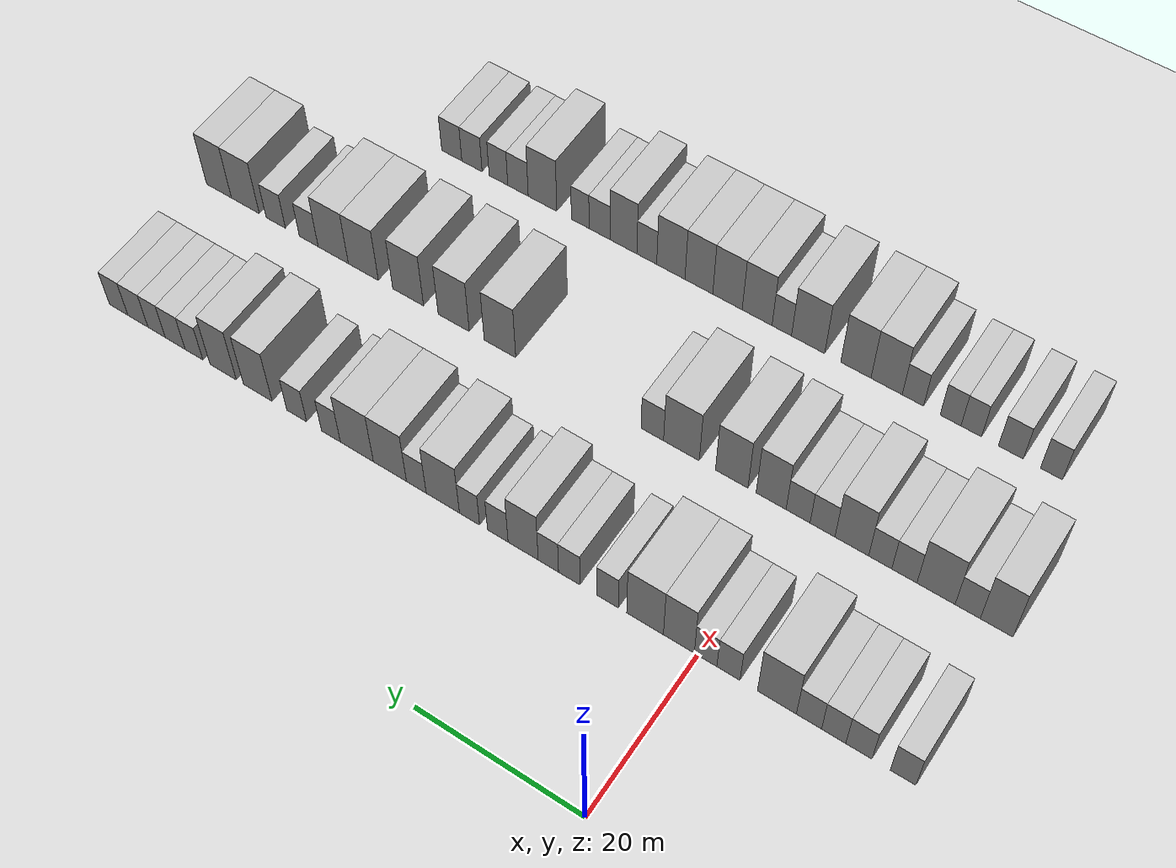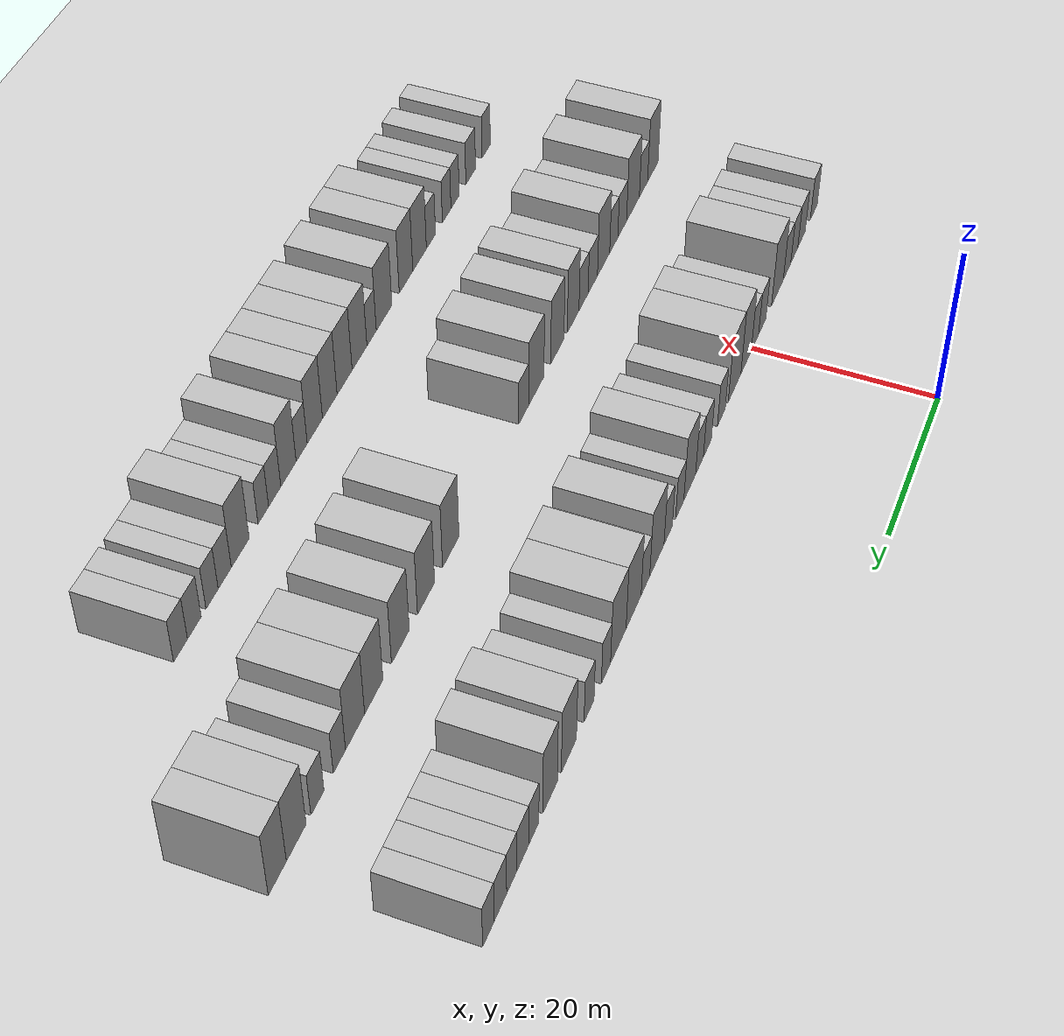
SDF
<sdf version="1.6">
 <world name="default">
  <include><name>ground_plane_1</name><uri>model://HANNAS_ground_plane</uri></include>
  <model name="building_79">
   <static>1</static>
   <pose>25.0000 -23.0852 0 0.000000 0.000000 0.000000</pose>
   <link name="link">
    <pose>0 0 3.00 0 0 0</pose>
    <collision name="collision"><geometry><box><size>10.0000 2.7776 6.0000</size></box></geometry></collision>
    <visual name="visual">
     <cast_shadows>0</cast_shadows>
     <geometry><box><size>10.0000 2.7776 6.0000</size></box></geometry>
     <material>
      <script>
       <uri>model://HANNAS_wall/materials/scripts</uri>
       <uri>model://HANNAS_wall/materials/textures</uri>
       <name>vrc/HANNAS_wall</name>
      </script>
     </material>
    </visual>
   </link>
  </model>
  <model name="building_80">
   <static>1</static>
   <pose>25.0000 -18.2527 0 0.000000 0.000000 0.000000</pose>
   <link name="link">
    <pose>0 0 3.00 0 0 0</pose>
    <collision name="collision"><geometry><box><size>10.0000 2.8874 6.0000</size></box></geometry></collision>
    <visual name="visual">
     <cast_shadows>0</cast_shadows>
     <geometry><box><size>10.0000 2.8874 6.0000</size></box></geometry>
     <material>
      <script>
       <uri>model://HANNAS_wall/materials/scripts</uri>
       <uri>model://HANNAS_wall/materials/textures</uri>
       <name>vrc/HANNAS_wall</name>
      </script>
     </material>
    </visual>
   </link>
  </model>
  <model name="building_81">
   <static>1</static>
   <pose>25.0000 -15.4589 0 0.000000 0.000000 0.000000</pose>
   <link name="link">
    <pose>0 0 3.00 0 0 0</pose>
    <collision name="collision"><geometry><box><size>10.0000 2.7003 6.0000</size></box></geometry></collision>
    <visual name="visual">
     <cast_shadows>0</cast_shadows>
     <geometry><box><size>10.0000 2.7003 6.0000</size></box></geometry>
     <material>
      <script>
       <uri>model://HANNAS_wall/materials/scripts</uri>
       <uri>model://HANNAS_wall/materials/textures</uri>
       <name>vrc/HANNAS_wall</name>
      </script>
     </material>
    </visual>
   </link>
  </model>
  <model name="building_82">
   <static>1</static>
   <pose>25.0000 -12.6991 0 0.000000 0.000000 0.000000</pose>
   <link name="link">
    <pose>0 0 3.00 0 0 0</pose>
    <collision name="collision"><geometry><box><size>10.0000 2.8193 6.0000</size></box></geometry></collision>
    <visual name="visual">
     <cast_shadows>0</cast_shadows>
     <geometry><box><size>10.0000 2.8193 6.0000</size></box></geometry>
     <material>
      <script>
       <uri>model://HANNAS_wall/materials/scripts</uri>
       <uri>model://HANNAS_wall/materials/textures</uri>
       <name>vrc/HANNAS_wall</name>
      </script>
     </material>
    </visual>
   </link>
  </model>
  <model name="building_83">
   <static>1</static>
   <pose>25.0000 -9.0820 0 0.000000 0.000000 0.000000</pose>
   <link name="link">
    <pose>0 0 4.50 0 0 0</pose>
    <collision name="collision"><geometry><box><size>10.0000 4.4149 9.0000</size></box></geometry></collision>
    <visual name="visual">
     <cast_shadows>0</cast_shadows>
     <geometry><box><size>10.0000 4.4149 9.0000</size></box></geometry>
     <material>
      <script>
       <uri>model://HANNAS_wall/materials/scripts</uri>
       <uri>model://HANNAS_wall/materials/textures</uri>
       <name>vrc/HANNAS_wall</name>
      </script>
     </material>
    </visual>
   </link>
  </model>
  <model name="building_84">
   <static>1</static>
   <pose>25.0000 -3.5385 0 0.000000 0.000000 0.000000</pose>
   <link name="link">
    <pose>0 0 3.00 0 0 0</pose>
    <collision name="collision"><geometry><box><size>10.0000 2.6722 6.0000</size></box></geometry></collision>
    <visual name="visual">
     <cast_shadows>0</cast_shadows>
     <geometry><box><size>10.0000 2.6722 6.0000</size></box></geometry>
     <material>
      <script>
       <uri>model://HANNAS_wall/materials/scripts</uri>
       <uri>model://HANNAS_wall/materials/textures</uri>
       <name>vrc/HANNAS_wall</name>
      </script>
     </material>
    </visual>
   </link>
  </model>
  <model name="building_85">
   <static>1</static>
   <pose>25.0000 -0.8934 0 0.000000 0.000000 0.000000</pose>
   <link name="link">
    <pose>0 0 3.00 0 0 0</pose>
    <collision name="collision"><geometry><box><size>10.0000 2.6178 6.0000</size></box></geometry></collision>
    <visual name="visual">
     <cast_shadows>0</cast_shadows>
     <geometry><box><size>10.0000 2.6178 6.0000</size></box></geometry>
     <material>
      <script>
       <uri>model://HANNAS_wall/materials/scripts</uri>
       <uri>model://HANNAS_wall/materials/textures</uri>
       <name>vrc/HANNAS_wall</name>
      </script>
     </material>
    </visual>
   </link>
  </model>
  <model name="building_86">
   <static>1</static>
   <pose>25.0000 2.2279 0 0.000000 0.000000 0.000000</pose>
   <link name="link">
    <pose>0 0 4.50 0 0 0</pose>
    <collision name="collision"><geometry><box><size>10.0000 3.6249 9.0000</size></box></geometry></collision>
    <visual name="visual">
     <cast_shadows>0</cast_shadows>
     <geometry><box><size>10.0000 3.6249 9.0000</size></box></geometry>
     <material>
      <script>
       <uri>model://HANNAS_wall/materials/scripts</uri>
       <uri>model://HANNAS_wall/materials/textures</uri>
       <name>vrc/HANNAS_wall</name>
      </script>
     </material>
    </visual>
   </link>
  </model>
  <model name="building_87">
   <static>1</static>
   <pose>25.0000 6.2214 0 0.000000 0.000000 0.000000</pose>
   <link name="link">
    <pose>0 0 4.50 0 0 0</pose>
    <collision name="collision"><geometry><box><size>10.0000 4.3621 9.0000</size></box></geometry></collision>
    <visual name="visual">
     <cast_shadows>0</cast_shadows>
     <geometry><box><size>10.0000 4.3621 9.0000</size></box></geometry>
     <material>
      <script>
       <uri>model://HANNAS_wall/materials/scripts</uri>
       <uri>model://HANNAS_wall/materials/textures</uri>
       <name>vrc/HANNAS_wall</name>
      </script>
     </material>
    </visual>
   </link>
  </model>
  <model name="building_88">
   <static>1</static>
   <pose>25.0000 10.7197 0 0.000000 0.000000 0.000000</pose>
   <link name="link">
    <pose>0 0 3.00 0 0 0</pose>
    <collision name="collision"><geometry><box><size>10.0000 2.6344 6.0000</size></box></geometry></collision>
    <visual name="visual">
     <cast_shadows>0</cast_shadows>
     <geometry><box><size>10.0000 2.6344 6.0000</size></box></geometry>
     <material>
      <script>
       <uri>model://HANNAS_wall/materials/scripts</uri>
       <uri>model://HANNAS_wall/materials/textures</uri>
       <name>vrc/HANNAS_wall</name>
      </script>
     </material>
    </visual>
   </link>
  </model>
  <model name="building_89">
   <static>1</static>
   <pose>25.0000 15.3460 0 0.000000 0.000000 0.000000</pose>
   <link name="link">
    <pose>0 0 3.00 0 0 0</pose>
    <collision name="collision"><geometry><box><size>10.0000 2.6183 6.0000</size></box></geometry></collision>
    <visual name="visual">
     <cast_shadows>0</cast_shadows>
     <geometry><box><size>10.0000 2.6183 6.0000</size></box></geometry>
     <material>
      <script>
       <uri>model://HANNAS_wall/materials/scripts</uri>
       <uri>model://HANNAS_wall/materials/textures</uri>
       <name>vrc/HANNAS_wall</name>
      </script>
     </material>
    </visual>
   </link>
  </model>
  <model name="building_90">
   <static>1</static>
   <pose>25.0000 17.9057 0 0.000000 0.000000 0.000000</pose>
   <link name="link">
    <pose>0 0 3.00 0 0 0</pose>
    <collision name="collision"><geometry><box><size>10.0000 2.5010 6.0000</size></box></geometry></collision>
    <visual name="visual">
     <cast_shadows>0</cast_shadows>
     <geometry><box><size>10.0000 2.5010 6.0000</size></box></geometry>
     <material>
      <script>
       <uri>model://HANNAS_wall/materials/scripts</uri>
       <uri>model://HANNAS_wall/materials/textures</uri>
       <name>vrc/HANNAS_wall</name>
      </script>
     </material>
    </visual>
   </link>
  </model>
  <model name="building_91">
   <static>1</static>
   <pose>25.0000 21.0276 0 0.000000 0.000000 0.000000</pose>
   <link name="link">
    <pose>0 0 4.50 0 0 0</pose>
    <collision name="collision"><geometry><box><size>10.0000 3.7429 9.0000</size></box></geometry></collision>
    <visual name="visual">
     <cast_shadows>0</cast_shadows>
     <geometry><box><size>10.0000 3.7429 9.0000</size></box></geometry>
     <material>
      <script>
       <uri>model://HANNAS_wall/materials/scripts</uri>
       <uri>model://HANNAS_wall/materials/textures</uri>
       <name>vrc/HANNAS_wall</name>
      </script>
     </material>
    </visual>
   </link>
  </model>
  <model name="building_92">
   <static>1</static>
   <pose>25.0000 24.1853 0 0.000000 0.000000 0.000000</pose>
   <link name="link">
    <pose>0 0 3.00 0 0 0</pose>
    <collision name="collision"><geometry><box><size>10.0000 2.5724 6.0000</size></box></geometry></collision>
    <visual name="visual">
     <cast_shadows>0</cast_shadows>
     <geometry><box><size>10.0000 2.5724 6.0000</size></box></geometry>
     <material>
      <script>
       <uri>model://HANNAS_wall/materials/scripts</uri>
       <uri>model://HANNAS_wall/materials/textures</uri>
       <name>vrc/HANNAS_wall</name>
      </script>
     </material>
    </visual>
   </link>
  </model>
  <model name="building_93">
   <static>1</static>
   <pose>25.0000 27.7443 0 0.000000 0.000000 0.000000</pose>
   <link name="link">
    <pose>0 0 3.00 0 0 0</pose>
    <collision name="collision"><geometry><box><size>10.0000 2.5457 6.0000</size></box></geometry></collision>
    <visual name="visual">
     <cast_shadows>0</cast_shadows>
     <geometry><box><size>10.0000 2.5457 6.0000</size></box></geometry>
     <material>
      <script>
       <uri>model://HANNAS_wall/materials/scripts</uri>
       <uri>model://HANNAS_wall/materials/textures</uri>
       <name>vrc/HANNAS_wall</name>
      </script>
     </material>
    </visual>
   </link>
  </model>
  <model name="building_94">
   <static>1</static>
   <pose>25.0000 31.1478 0 0.000000 0.000000 0.000000</pose>
   <link name="link">
    <pose>0 0 4.50 0 0 0</pose>
    <collision name="collision"><geometry><box><size>10.0000 4.2612 9.0000</size></box></geometry></collision>
    <visual name="visual">
     <cast_shadows>0</cast_shadows>
     <geometry><box><size>10.0000 4.2612 9.0000</size></box></geometry>
     <material>
      <script>
       <uri>model://HANNAS_wall/materials/scripts</uri>
       <uri>model://HANNAS_wall/materials/textures</uri>
       <name>vrc/HANNAS_wall</name>
      </script>
     </material>
    </visual>
   </link>
  </model>
  <model name="building_95">
   <static>1</static>
   <pose>25.0000 34.5510 0 0.000000 0.000000 0.000000</pose>
   <link name="link">
    <pose>0 0 3.00 0 0 0</pose>
    <collision name="collision"><geometry><box><size>10.0000 2.5452 6.0000</size></box></geometry></collision>
    <visual name="visual">
     <cast_shadows>0</cast_shadows>
     <geometry><box><size>10.0000 2.5452 6.0000</size></box></geometry>
     <material>
      <script>
       <uri>model://HANNAS_wall/materials/scripts</uri>
       <uri>model://HANNAS_wall/materials/textures</uri>
       <name>vrc/HANNAS_wall</name>
      </script>
     </material>
    </visual>
   </link>
  </model>
  <model name="building_96">
   <static>1</static>
   <pose>25.0000 37.9860 0 0.000000 0.000000 0.000000</pose>
   <link name="link">
    <pose>0 0 4.50 0 0 0</pose>
    <collision name="collision"><geometry><box><size>10.0000 4.3250 9.0000</size></box></geometry></collision>
    <visual name="visual">
     <cast_shadows>0</cast_shadows>
     <geometry><box><size>10.0000 4.3250 9.0000</size></box></geometry>
     <material>
      <script>
       <uri>model://HANNAS_wall/materials/scripts</uri>
       <uri>model://HANNAS_wall/materials/textures</uri>
       <name>vrc/HANNAS_wall</name>
      </script>
     </material>
    </visual>
   </link>
  </model>
  <model name="building_97">
   <static>1</static>
   <pose>25.0000 42.3266 0 0.000000 0.000000 0.000000</pose>
   <link name="link">
    <pose>0 0 4.50 0 0 0</pose>
    <collision name="collision"><geometry><box><size>10.0000 4.3562 9.0000</size></box></geometry></collision>
    <visual name="visual">
     <cast_shadows>0</cast_shadows>
     <geometry><box><size>10.0000 4.3562 9.0000</size></box></geometry>
     <material>
      <script>
       <uri>model://HANNAS_wall/materials/scripts</uri>
       <uri>model://HANNAS_wall/materials/textures</uri>
       <name>vrc/HANNAS_wall</name>
      </script>
     </material>
    </visual>
   </link>
  </model>
  <model name="building_98">
   <static>1</static>
   <pose>25.0000 45.7647 0 0.000000 0.000000 0.000000</pose>
   <link name="link">
    <pose>0 0 3.00 0 0 0</pose>
    <collision name="collision"><geometry><box><size>10.0000 2.5199 6.0000</size></box></geometry></collision>
    <visual name="visual">
     <cast_shadows>0</cast_shadows>
     <geometry><box><size>10.0000 2.5199 6.0000</size></box></geometry>
     <material>
      <script>
       <uri>model://HANNAS_wall/materials/scripts</uri>
       <uri>model://HANNAS_wall/materials/textures</uri>
       <name>vrc/HANNAS_wall</name>
      </script>
     </material>
    </visual>
   </link>
  </model>
  <model name="building_99">
   <static>1</static>
   <pose>25.0000 50.3638 0 0.000000 0.000000 0.000000</pose>
   <link name="link">
    <pose>0 0 3.00 0 0 0</pose>
    <collision name="collision"><geometry><box><size>10.0000 2.6784 6.0000</size></box></geometry></collision>
    <visual name="visual">
     <cast_shadows>0</cast_shadows>
     <geometry><box><size>10.0000 2.6784 6.0000</size></box></geometry>
     <material>
      <script>
       <uri>model://HANNAS_wall/materials/scripts</uri>
       <uri>model://HANNAS_wall/materials/textures</uri>
       <name>vrc/HANNAS_wall</name>
      </script>
     </material>
    </visual>
   </link>
  </model>
  <model name="building_100">
   <static>1</static>
   <pose>25.0000 55.6652 0 0.000000 0.000000 0.000000</pose>
   <link name="link">
    <pose>0 0 4.50 0 0 0</pose>
    <collision name="collision"><geometry><box><size>10.0000 3.9243 9.0000</size></box></geometry></collision>
    <visual name="visual">
     <cast_shadows>0</cast_shadows>
     <geometry><box><size>10.0000 3.9243 9.0000</size></box></geometry>
     <material>
      <script>
       <uri>model://HANNAS_wall/materials/scripts</uri>
       <uri>model://HANNAS_wall/materials/textures</uri>
       <name>vrc/HANNAS_wall</name>
      </script>
     </material>
    </visual>
   </link>
  </model>
  <model name="building_101">
   <static>1</static>
   <pose>25.0000 60.4549 0 0.000000 0.000000 0.000000</pose>
   <link name="link">
    <pose>0 0 4.50 0 0 0</pose>
    <collision name="collision"><geometry><box><size>10.0000 3.6550 9.0000</size></box></geometry></collision>
    <visual name="visual">
     <cast_shadows>0</cast_shadows>
     <geometry><box><size>10.0000 3.6550 9.0000</size></box></geometry>
     <material>
      <script>
       <uri>model://HANNAS_wall/materials/scripts</uri>
       <uri>model://HANNAS_wall/materials/textures</uri>
       <name>vrc/HANNAS_wall</name>
      </script>
     </material>
    </visual>
   </link>
  </model>
  <model name="building_102">
   <static>1</static>
   <pose>25.0000 64.5301 0 0.000000 0.000000 0.000000</pose>
   <link name="link">
    <pose>0 0 3.00 0 0 0</pose>
    <collision name="collision"><geometry><box><size>10.0000 2.4954 6.0000</size></box></geometry></collision>
    <visual name="visual">
     <cast_shadows>0</cast_shadows>
     <geometry><box><size>10.0000 2.4954 6.0000</size></box></geometry>
     <material>
      <script>
       <uri>model://HANNAS_wall/materials/scripts</uri>
       <uri>model://HANNAS_wall/materials/textures</uri>
       <name>vrc/HANNAS_wall</name>
      </script>
     </material>
    </visual>
   </link>
  </model>
  <model name="building_103">
   <static>1</static>
   <pose>25.0000 67.1800 0 0.000000 0.000000 0.000000</pose>
   <link name="link">
    <pose>0 0 3.00 0 0 0</pose>
    <collision name="collision"><geometry><box><size>10.0000 2.8044 6.0000</size></box></geometry></collision>
    <visual name="visual">
     <cast_shadows>0</cast_shadows>
     <geometry><box><size>10.0000 2.8044 6.0000</size></box></geometry>
     <material>
      <script>
       <uri>model://HANNAS_wall/materials/scripts</uri>
       <uri>model://HANNAS_wall/materials/textures</uri>
       <name>vrc/HANNAS_wall</name>
      </script>
     </material>
    </visual>
   </link>
  </model>
  <model name="building_104">
   <static>1</static>
   <pose>25.0000 69.8176 0 0.000000 0.000000 0.000000</pose>
   <link name="link">
    <pose>0 0 3.00 0 0 0</pose>
    <collision name="collision"><geometry><box><size>10.0000 2.4708 6.0000</size></box></geometry></collision>
    <visual name="visual">
     <cast_shadows>0</cast_shadows>
     <geometry><box><size>10.0000 2.4708 6.0000</size></box></geometry>
     <material>
      <script>
       <uri>model://HANNAS_wall/materials/scripts</uri>
       <uri>model://HANNAS_wall/materials/textures</uri>
       <name>vrc/HANNAS_wall</name>
      </script>
     </material>
    </visual>
   </link>
  </model>
  <model name="building_105">
   <static>1</static>
   <pose>25.0000 72.4979 0 0.000000 0.000000 0.000000</pose>
   <link name="link">
    <pose>0 0 3.00 0 0 0</pose>
    <collision name="collision"><geometry><box><size>10.0000 2.8897 6.0000</size></box></geometry></collision>
    <visual name="visual">
     <cast_shadows>0</cast_shadows>
     <geometry><box><size>10.0000 2.8897 6.0000</size></box></geometry>
     <material>
      <script>
       <uri>model://HANNAS_wall/materials/scripts</uri>
       <uri>model://HANNAS_wall/materials/textures</uri>
       <name>vrc/HANNAS_wall</name>
      </script>
     </material>
    </visual>
   </link>
  </model>
  <model name="building_106">
   <static>1</static>
   <pose>25.0000 75.2765 0 0.000000 0.000000 0.000000</pose>
   <link name="link">
    <pose>0 0 3.00 0 0 0</pose>
    <collision name="collision"><geometry><box><size>10.0000 2.6674 6.0000</size></box></geometry></collision>
    <visual name="visual">
     <cast_shadows>0</cast_shadows>
     <geometry><box><size>10.0000 2.6674 6.0000</size></box></geometry>
     <material>
      <script>
       <uri>model://HANNAS_wall/materials/scripts</uri>
       <uri>model://HANNAS_wall/materials/textures</uri>
       <name>vrc/HANNAS_wall</name>
      </script>
     </material>
    </visual>
   </link>
  </model>
  <model name="building_261">
   <static>1</static>
   <pose>44.0000 -23.2607 0 0.000000 0.000000 0.000000</pose>
   <link name="link">
    <pose>0 0 4.50 0 0 0</pose>
    <collision name="collision"><geometry><box><size>10.0000 3.6522 9.0000</size></box></geometry></collision>
    <visual name="visual">
     <cast_shadows>0</cast_shadows>
     <geometry><box><size>10.0000 3.6522 9.0000</size></box></geometry>
     <material>
      <script>
       <uri>model://HANNAS_wall/materials/scripts</uri>
       <uri>model://HANNAS_wall/materials/textures</uri>
       <name>vrc/HANNAS_wall</name>
      </script>
     </material>
    </visual>
   </link>
  </model>
  <model name="building_262">
   <static>1</static>
   <pose>44.0000 -20.0152 0 0.000000 0.000000 0.000000</pose>
   <link name="link">
    <pose>0 0 3.00 0 0 0</pose>
    <collision name="collision"><geometry><box><size>10.0000 2.8389 6.0000</size></box></geometry></collision>
    <visual name="visual">
     <cast_shadows>0</cast_shadows>
     <geometry><box><size>10.0000 2.8389 6.0000</size></box></geometry>
     <material>
      <script>
       <uri>model://HANNAS_wall/materials/scripts</uri>
       <uri>model://HANNAS_wall/materials/textures</uri>
       <name>vrc/HANNAS_wall</name>
      </script>
     </material>
    </visual>
   </link>
  </model>
  <model name="building_263">
   <static>1</static>
   <pose>44.0000 -16.4196 0 0.000000 0.000000 0.000000</pose>
   <link name="link">
    <pose>0 0 4.50 0 0 0</pose>
    <collision name="collision"><geometry><box><size>10.0000 4.3523 9.0000</size></box></geometry></collision>
    <visual name="visual">
     <cast_shadows>0</cast_shadows>
     <geometry><box><size>10.0000 4.3523 9.0000</size></box></geometry>
     <material>
      <script>
       <uri>model://HANNAS_wall/materials/scripts</uri>
       <uri>model://HANNAS_wall/materials/textures</uri>
       <name>vrc/HANNAS_wall</name>
      </script>
     </material>
    </visual>
   </link>
  </model>
  <model name="building_264">
   <static>1</static>
   <pose>44.0000 -12.7942 0 0.000000 0.000000 0.000000</pose>
   <link name="link">
    <pose>0 0 3.00 0 0 0</pose>
    <collision name="collision"><geometry><box><size>10.0000 2.8984 6.0000</size></box></geometry></collision>
    <visual name="visual">
     <cast_shadows>0</cast_shadows>
     <geometry><box><size>10.0000 2.8984 6.0000</size></box></geometry>
     <material>
      <script>
       <uri>model://HANNAS_wall/materials/scripts</uri>
       <uri>model://HANNAS_wall/materials/textures</uri>
       <name>vrc/HANNAS_wall</name>
      </script>
     </material>
    </visual>
   </link>
  </model>
  <model name="building_265">
   <static>1</static>
   <pose>44.0000 -10.0050 0 0.000000 0.000000 0.000000</pose>
   <link name="link">
    <pose>0 0 3.00 0 0 0</pose>
    <collision name="collision"><geometry><box><size>10.0000 2.6799 6.0000</size></box></geometry></collision>
    <visual name="visual">
     <cast_shadows>0</cast_shadows>
     <geometry><box><size>10.0000 2.6799 6.0000</size></box></geometry>
     <material>
      <script>
       <uri>model://HANNAS_wall/materials/scripts</uri>
       <uri>model://HANNAS_wall/materials/textures</uri>
       <name>vrc/HANNAS_wall</name>
      </script>
     </material>
    </visual>
   </link>
  </model>
  <model name="building_266">
   <static>1</static>
   <pose>44.0000 -6.6858 0 0.000000 0.000000 0.000000</pose>
   <link name="link">
    <pose>0 0 4.50 0 0 0</pose>
    <collision name="collision"><geometry><box><size>10.0000 3.9586 9.0000</size></box></geometry></collision>
    <visual name="visual">
     <cast_shadows>0</cast_shadows>
     <geometry><box><size>10.0000 3.9586 9.0000</size></box></geometry>
     <material>
      <script>
       <uri>model://HANNAS_wall/materials/scripts</uri>
       <uri>model://HANNAS_wall/materials/textures</uri>
       <name>vrc/HANNAS_wall</name>
      </script>
     </material>
    </visual>
   </link>
  </model>
  <model name="building_267">
   <static>1</static>
   <pose>44.0000 -3.2329 0 0.000000 0.000000 0.000000</pose>
   <link name="link">
    <pose>0 0 3.00 0 0 0</pose>
    <collision name="collision"><geometry><box><size>10.0000 2.9471 6.0000</size></box></geometry></collision>
    <visual name="visual">
     <cast_shadows>0</cast_shadows>
     <geometry><box><size>10.0000 2.9471 6.0000</size></box></geometry>
     <material>
      <script>
       <uri>model://HANNAS_wall/materials/scripts</uri>
       <uri>model://HANNAS_wall/materials/textures</uri>
       <name>vrc/HANNAS_wall</name>
      </script>
     </material>
    </visual>
   </link>
  </model>
  <model name="building_268">
   <static>1</static>
   <pose>44.0000 -0.3255 0 0.000000 0.000000 0.000000</pose>
   <link name="link">
    <pose>0 0 3.00 0 0 0</pose>
    <collision name="collision"><geometry><box><size>10.0000 2.8678 6.0000</size></box></geometry></collision>
    <visual name="visual">
     <cast_shadows>0</cast_shadows>
     <geometry><box><size>10.0000 2.8678 6.0000</size></box></geometry>
     <material>
      <script>
       <uri>model://HANNAS_wall/materials/scripts</uri>
       <uri>model://HANNAS_wall/materials/textures</uri>
       <name>vrc/HANNAS_wall</name>
      </script>
     </material>
    </visual>
   </link>
  </model>
  <model name="building_269">
   <static>1</static>
   <pose>44.0000 2.9150 0 0.000000 0.000000 0.000000</pose>
   <link name="link">
    <pose>0 0 4.50 0 0 0</pose>
    <collision name="collision"><geometry><box><size>10.0000 3.6132 9.0000</size></box></geometry></collision>
    <visual name="visual">
     <cast_shadows>0</cast_shadows>
     <geometry><box><size>10.0000 3.6132 9.0000</size></box></geometry>
     <material>
      <script>
       <uri>model://HANNAS_wall/materials/scripts</uri>
       <uri>model://HANNAS_wall/materials/textures</uri>
       <name>vrc/HANNAS_wall</name>
      </script>
     </material>
    </visual>
   </link>
  </model>
  <model name="building_270">
   <static>1</static>
   <pose>44.0000 7.7042 0 0.000000 0.000000 0.000000</pose>
   <link name="link">
    <pose>0 0 4.50 0 0 0</pose>
    <collision name="collision"><geometry><box><size>10.0000 3.9651 9.0000</size></box></geometry></collision>
    <visual name="visual">
     <cast_shadows>0</cast_shadows>
     <geometry><box><size>10.0000 3.9651 9.0000</size></box></geometry>
     <material>
      <script>
       <uri>model://HANNAS_wall/materials/scripts</uri>
       <uri>model://HANNAS_wall/materials/textures</uri>
       <name>vrc/HANNAS_wall</name>
      </script>
     </material>
    </visual>
   </link>
  </model>
  <model name="building_271">
   <static>1</static>
   <pose>44.0000 13.9121 0 0.000000 0.000000 0.000000</pose>
   <link name="link">
    <pose>0 0 4.50 0 0 0</pose>
    <collision name="collision"><geometry><box><size>10.0000 4.4507 9.0000</size></box></geometry></collision>
    <visual name="visual">
     <cast_shadows>0</cast_shadows>
     <geometry><box><size>10.0000 4.4507 9.0000</size></box></geometry>
     <material>
      <script>
       <uri>model://HANNAS_wall/materials/scripts</uri>
       <uri>model://HANNAS_wall/materials/textures</uri>
       <name>vrc/HANNAS_wall</name>
      </script>
     </material>
    </visual>
   </link>
  </model>
  <model name="building_272">
   <static>1</static>
   <pose>44.0000 17.5521 0 0.000000 0.000000 0.000000</pose>
   <link name="link">
    <pose>0 0 3.00 0 0 0</pose>
    <collision name="collision"><geometry><box><size>10.0000 2.8293 6.0000</size></box></geometry></collision>
    <visual name="visual">
     <cast_shadows>0</cast_shadows>
     <geometry><box><size>10.0000 2.8293 6.0000</size></box></geometry>
     <material>
      <script>
       <uri>model://HANNAS_wall/materials/scripts</uri>
       <uri>model://HANNAS_wall/materials/textures</uri>
       <name>vrc/HANNAS_wall</name>
      </script>
     </material>
    </visual>
   </link>
  </model>
  <model name="building_273">
   <static>1</static>
   <pose>44.0000 37.2610 0 0.000000 0.000000 0.000000</pose>
   <link name="link">
    <pose>0 0 4.50 0 0 0</pose>
    <collision name="collision"><geometry><box><size>10.0000 4.1962 9.0000</size></box></geometry></collision>
    <visual name="visual">
     <cast_shadows>0</cast_shadows>
     <geometry><box><size>10.0000 4.1962 9.0000</size></box></geometry>
     <material>
      <script>
       <uri>model://HANNAS_wall/materials/scripts</uri>
       <uri>model://HANNAS_wall/materials/textures</uri>
       <name>vrc/HANNAS_wall</name>
      </script>
     </material>
    </visual>
   </link>
  </model>
  <model name="building_274">
   <static>1</static>
   <pose>44.0000 43.4618 0 0.000000 0.000000 0.000000</pose>
   <link name="link">
    <pose>0 0 4.50 0 0 0</pose>
    <collision name="collision"><geometry><box><size>10.0000 4.2055 9.0000</size></box></geometry></collision>
    <visual name="visual">
     <cast_shadows>0</cast_shadows>
     <geometry><box><size>10.0000 4.2055 9.0000</size></box></geometry>
     <material>
      <script>
       <uri>model://HANNAS_wall/materials/scripts</uri>
       <uri>model://HANNAS_wall/materials/textures</uri>
       <name>vrc/HANNAS_wall</name>
      </script>
     </material>
    </visual>
   </link>
  </model>
  <model name="building_275">
   <static>1</static>
   <pose>44.0000 49.6815 0 0.000000 0.000000 0.000000</pose>
   <link name="link">
    <pose>0 0 4.50 0 0 0</pose>
    <collision name="collision"><geometry><box><size>10.0000 4.2341 9.0000</size></box></geometry></collision>
    <visual name="visual">
     <cast_shadows>0</cast_shadows>
     <geometry><box><size>10.0000 4.2341 9.0000</size></box></geometry>
     <material>
      <script>
       <uri>model://HANNAS_wall/materials/scripts</uri>
       <uri>model://HANNAS_wall/materials/textures</uri>
       <name>vrc/HANNAS_wall</name>
      </script>
     </material>
    </visual>
   </link>
  </model>
  <model name="building_276">
   <static>1</static>
   <pose>44.0000 55.8992 0 0.000000 0.000000 0.000000</pose>
   <link name="link">
    <pose>0 0 4.50 0 0 0</pose>
    <collision name="collision"><geometry><box><size>10.0000 4.2013 9.0000</size></box></geometry></collision>
    <visual name="visual">
     <cast_shadows>0</cast_shadows>
     <geometry><box><size>10.0000 4.2013 9.0000</size></box></geometry>
     <material>
      <script>
       <uri>model://HANNAS_wall/materials/scripts</uri>
       <uri>model://HANNAS_wall/materials/textures</uri>
       <name>vrc/HANNAS_wall</name>
      </script>
     </material>
    </visual>
   </link>
  </model>
  <model name="building_277">
   <static>1</static>
   <pose>44.0000 60.1384 0 0.000000 0.000000 0.000000</pose>
   <link name="link">
    <pose>0 0 4.50 0 0 0</pose>
    <collision name="collision"><geometry><box><size>10.0000 4.2772 9.0000</size></box></geometry></collision>
    <visual name="visual">
     <cast_shadows>0</cast_shadows>
     <geometry><box><size>10.0000 4.2772 9.0000</size></box></geometry>
     <material>
      <script>
       <uri>model://HANNAS_wall/materials/scripts</uri>
       <uri>model://HANNAS_wall/materials/textures</uri>
       <name>vrc/HANNAS_wall</name>
      </script>
     </material>
    </visual>
   </link>
  </model>
  <model name="building_278">
   <static>1</static>
   <pose>44.0000 63.6222 0 0.000000 0.000000 0.000000</pose>
   <link name="link">
    <pose>0 0 3.00 0 0 0</pose>
    <collision name="collision"><geometry><box><size>10.0000 2.6903 6.0000</size></box></geometry></collision>
    <visual name="visual">
     <cast_shadows>0</cast_shadows>
     <geometry><box><size>10.0000 2.6903 6.0000</size></box></geometry>
     <material>
      <script>
       <uri>model://HANNAS_wall/materials/scripts</uri>
       <uri>model://HANNAS_wall/materials/textures</uri>
       <name>vrc/HANNAS_wall</name>
      </script>
     </material>
    </visual>
   </link>
  </model>
  <model name="building_279">
   <static>1</static>
   <pose>44.0000 68.3635 0 0.000000 0.000000 0.000000</pose>
   <link name="link">
    <pose>0 0 3.00 0 0 0</pose>
    <collision name="collision"><geometry><box><size>10.0000 2.7923 6.0000</size></box></geometry></collision>
    <visual name="visual">
     <cast_shadows>0</cast_shadows>
     <geometry><box><size>10.0000 2.7923 6.0000</size></box></geometry>
     <material>
      <script>
       <uri>model://HANNAS_wall/materials/scripts</uri>
       <uri>model://HANNAS_wall/materials/textures</uri>
       <name>vrc/HANNAS_wall</name>
      </script>
     </material>
    </visual>
   </link>
  </model>
  <model name="building_280">
   <static>1</static>
   <pose>44.0000 72.7982 0 0.000000 0.000000 0.000000</pose>
   <link name="link">
    <pose>0 0 4.50 0 0 0</pose>
    <collision name="collision"><geometry><box><size>10.0000 4.0771 9.0000</size></box></geometry></collision>
    <visual name="visual">
     <cast_shadows>0</cast_shadows>
     <geometry><box><size>10.0000 4.0771 9.0000</size></box></geometry>
     <material>
      <script>
       <uri>model://HANNAS_wall/materials/scripts</uri>
       <uri>model://HANNAS_wall/materials/textures</uri>
       <name>vrc/HANNAS_wall</name>
      </script>
     </material>
    </visual>
   </link>
  </model>
  <model name="building_281">
   <static>1</static>
   <pose>44.0000 76.6712 0 0.000000 0.000000 0.000000</pose>
   <link name="link">
    <pose>0 0 4.50 0 0 0</pose>
    <collision name="collision"><geometry><box><size>10.0000 3.6688 9.0000</size></box></geometry></collision>
    <visual name="visual">
     <cast_shadows>0</cast_shadows>
     <geometry><box><size>10.0000 3.6688 9.0000</size></box></geometry>
     <material>
      <script>
       <uri>model://HANNAS_wall/materials/scripts</uri>
       <uri>model://HANNAS_wall/materials/textures</uri>
       <name>vrc/HANNAS_wall</name>
      </script>
     </material>
    </visual>
   </link>
  </model>
  <model name="building_441">
   <static>1</static>
   <pose>63.0000 -19.8646 0 0.000000 0.000000 0.000000</pose>
   <link name="link">
    <pose>0 0 3.00 0 0 0</pose>
    <collision name="collision"><geometry><box><size>10.0000 2.5623 6.0000</size></box></geometry></collision>
    <visual name="visual">
     <cast_shadows>0</cast_shadows>
     <geometry><box><size>10.0000 2.5623 6.0000</size></box></geometry>
     <material>
      <script>
       <uri>model://HANNAS_wall/materials/scripts</uri>
       <uri>model://HANNAS_wall/materials/textures</uri>
       <name>vrc/HANNAS_wall</name>
      </script>
     </material>
    </visual>
   </link>
  </model>
  <model name="building_442">
   <static>1</static>
   <pose>63.0000 -15.1228 0 0.000000 0.000000 0.000000</pose>
   <link name="link">
    <pose>0 0 3.00 0 0 0</pose>
    <collision name="collision"><geometry><box><size>10.0000 2.9213 6.0000</size></box></geometry></collision>
    <visual name="visual">
     <cast_shadows>0</cast_shadows>
     <geometry><box><size>10.0000 2.9213 6.0000</size></box></geometry>
     <material>
      <script>
       <uri>model://HANNAS_wall/materials/scripts</uri>
       <uri>model://HANNAS_wall/materials/textures</uri>
       <name>vrc/HANNAS_wall</name>
      </script>
     </material>
    </visual>
   </link>
  </model>
  <model name="building_443">
   <static>1</static>
   <pose>63.0000 -10.4390 0 0.000000 0.000000 0.000000</pose>
   <link name="link">
    <pose>0 0 3.00 0 0 0</pose>
    <collision name="collision"><geometry><box><size>10.0000 2.4463 6.0000</size></box></geometry></collision>
    <visual name="visual">
     <cast_shadows>0</cast_shadows>
     <geometry><box><size>10.0000 2.4463 6.0000</size></box></geometry>
     <material>
      <script>
       <uri>model://HANNAS_wall/materials/scripts</uri>
       <uri>model://HANNAS_wall/materials/textures</uri>
       <name>vrc/HANNAS_wall</name>
      </script>
     </material>
    </visual>
   </link>
  </model>
  <model name="building_444">
   <static>1</static>
   <pose>63.0000 -7.9654 0 0.000000 0.000000 0.000000</pose>
   <link name="link">
    <pose>0 0 3.00 0 0 0</pose>
    <collision name="collision"><geometry><box><size>10.0000 2.5009 6.0000</size></box></geometry></collision>
    <visual name="visual">
     <cast_shadows>0</cast_shadows>
     <geometry><box><size>10.0000 2.5009 6.0000</size></box></geometry>
     <material>
      <script>
       <uri>model://HANNAS_wall/materials/scripts</uri>
       <uri>model://HANNAS_wall/materials/textures</uri>
       <name>vrc/HANNAS_wall</name>
      </script>
     </material>
    </visual>
   </link>
  </model>
  <model name="building_445">
   <static>1</static>
   <pose>63.0000 -3.4153 0 0.000000 0.000000 0.000000</pose>
   <link name="link">
    <pose>0 0 3.00 0 0 0</pose>
    <collision name="collision"><geometry><box><size>10.0000 2.5994 6.0000</size></box></geometry></collision>
    <visual name="visual">
     <cast_shadows>0</cast_shadows>
     <geometry><box><size>10.0000 2.5994 6.0000</size></box></geometry>
     <material>
      <script>
       <uri>model://HANNAS_wall/materials/scripts</uri>
       <uri>model://HANNAS_wall/materials/textures</uri>
       <name>vrc/HANNAS_wall</name>
      </script>
     </material>
    </visual>
   </link>
  </model>
  <model name="building_446">
   <static>1</static>
   <pose>63.0000 -0.1983 0 0.000000 0.000000 0.000000</pose>
   <link name="link">
    <pose>0 0 4.50 0 0 0</pose>
    <collision name="collision"><geometry><box><size>10.0000 3.8346 9.0000</size></box></geometry></collision>
    <visual name="visual">
     <cast_shadows>0</cast_shadows>
     <geometry><box><size>10.0000 3.8346 9.0000</size></box></geometry>
     <material>
      <script>
       <uri>model://HANNAS_wall/materials/scripts</uri>
       <uri>model://HANNAS_wall/materials/textures</uri>
       <name>vrc/HANNAS_wall</name>
      </script>
     </material>
    </visual>
   </link>
  </model>
  <model name="building_447">
   <static>1</static>
   <pose>63.0000 3.5952 0 0.000000 0.000000 0.000000</pose>
   <link name="link">
    <pose>0 0 4.50 0 0 0</pose>
    <collision name="collision"><geometry><box><size>10.0000 3.7524 9.0000</size></box></geometry></collision>
    <visual name="visual">
     <cast_shadows>0</cast_shadows>
     <geometry><box><size>10.0000 3.7524 9.0000</size></box></geometry>
     <material>
      <script>
       <uri>model://HANNAS_wall/materials/scripts</uri>
       <uri>model://HANNAS_wall/materials/textures</uri>
       <name>vrc/HANNAS_wall</name>
      </script>
     </material>
    </visual>
   </link>
  </model>
  <model name="building_448">
   <static>1</static>
   <pose>63.0000 9.5635 0 0.000000 0.000000 0.000000</pose>
   <link name="link">
    <pose>0 0 4.50 0 0 0</pose>
    <collision name="collision"><geometry><box><size>10.0000 4.1842 9.0000</size></box></geometry></collision>
    <visual name="visual">
     <cast_shadows>0</cast_shadows>
     <geometry><box><size>10.0000 4.1842 9.0000</size></box></geometry>
     <material>
      <script>
       <uri>model://HANNAS_wall/materials/scripts</uri>
       <uri>model://HANNAS_wall/materials/textures</uri>
       <name>vrc/HANNAS_wall</name>
      </script>
     </material>
    </visual>
   </link>
  </model>
  <model name="building_449">
   <static>1</static>
   <pose>63.0000 12.8939 0 0.000000 0.000000 0.000000</pose>
   <link name="link">
    <pose>0 0 3.00 0 0 0</pose>
    <collision name="collision"><geometry><box><size>10.0000 2.4765 6.0000</size></box></geometry></collision>
    <visual name="visual">
     <cast_shadows>0</cast_shadows>
     <geometry><box><size>10.0000 2.4765 6.0000</size></box></geometry>
     <material>
      <script>
       <uri>model://HANNAS_wall/materials/scripts</uri>
       <uri>model://HANNAS_wall/materials/textures</uri>
       <name>vrc/HANNAS_wall</name>
      </script>
     </material>
    </visual>
   </link>
  </model>
  <model name="building_450">
   <static>1</static>
   <pose>63.0000 16.0479 0 0.000000 0.000000 0.000000</pose>
   <link name="link">
    <pose>0 0 4.50 0 0 0</pose>
    <collision name="collision"><geometry><box><size>10.0000 3.8316 9.0000</size></box></geometry></collision>
    <visual name="visual">
     <cast_shadows>0</cast_shadows>
     <geometry><box><size>10.0000 3.8316 9.0000</size></box></geometry>
     <material>
      <script>
       <uri>model://HANNAS_wall/materials/scripts</uri>
       <uri>model://HANNAS_wall/materials/textures</uri>
       <name>vrc/HANNAS_wall</name>
      </script>
     </material>
    </visual>
   </link>
  </model>
  <model name="building_451">
   <static>1</static>
   <pose>63.0000 19.8739 0 0.000000 0.000000 0.000000</pose>
   <link name="link">
    <pose>0 0 4.50 0 0 0</pose>
    <collision name="collision"><geometry><box><size>10.0000 3.8203 9.0000</size></box></geometry></collision>
    <visual name="visual">
     <cast_shadows>0</cast_shadows>
     <geometry><box><size>10.0000 3.8203 9.0000</size></box></geometry>
     <material>
      <script>
       <uri>model://HANNAS_wall/materials/scripts</uri>
       <uri>model://HANNAS_wall/materials/textures</uri>
       <name>vrc/HANNAS_wall</name>
      </script>
     </material>
    </visual>
   </link>
  </model>
  <model name="building_452">
   <static>1</static>
   <pose>63.0000 23.6027 0 0.000000 0.000000 0.000000</pose>
   <link name="link">
    <pose>0 0 4.50 0 0 0</pose>
    <collision name="collision"><geometry><box><size>10.0000 3.6373 9.0000</size></box></geometry></collision>
    <visual name="visual">
     <cast_shadows>0</cast_shadows>
     <geometry><box><size>10.0000 3.6373 9.0000</size></box></geometry>
     <material>
      <script>
       <uri>model://HANNAS_wall/materials/scripts</uri>
       <uri>model://HANNAS_wall/materials/textures</uri>
       <name>vrc/HANNAS_wall</name>
      </script>
     </material>
    </visual>
   </link>
  </model>
  <model name="building_453">
   <static>1</static>
   <pose>63.0000 27.2914 0 0.000000 0.000000 0.000000</pose>
   <link name="link">
    <pose>0 0 4.50 0 0 0</pose>
    <collision name="collision"><geometry><box><size>10.0000 3.7400 9.0000</size></box></geometry></collision>
    <visual name="visual">
     <cast_shadows>0</cast_shadows>
     <geometry><box><size>10.0000 3.7400 9.0000</size></box></geometry>
     <material>
      <script>
       <uri>model://HANNAS_wall/materials/scripts</uri>
       <uri>model://HANNAS_wall/materials/textures</uri>
       <name>vrc/HANNAS_wall</name>
      </script>
     </material>
    </visual>
   </link>
  </model>
  <model name="building_454">
   <static>1</static>
   <pose>63.0000 30.4856 0 0.000000 0.000000 0.000000</pose>
   <link name="link">
    <pose>0 0 3.00 0 0 0</pose>
    <collision name="collision"><geometry><box><size>10.0000 2.6486 6.0000</size></box></geometry></collision>
    <visual name="visual">
     <cast_shadows>0</cast_shadows>
     <geometry><box><size>10.0000 2.6486 6.0000</size></box></geometry>
     <material>
      <script>
       <uri>model://HANNAS_wall/materials/scripts</uri>
       <uri>model://HANNAS_wall/materials/textures</uri>
       <name>vrc/HANNAS_wall</name>
      </script>
     </material>
    </visual>
   </link>
  </model>
  <model name="building_455">
   <static>1</static>
   <pose>63.0000 33.6200 0 0.000000 0.000000 0.000000</pose>
   <link name="link">
    <pose>0 0 4.50 0 0 0</pose>
    <collision name="collision"><geometry><box><size>10.0000 3.6201 9.0000</size></box></geometry></collision>
    <visual name="visual">
     <cast_shadows>0</cast_shadows>
     <geometry><box><size>10.0000 3.6201 9.0000</size></box></geometry>
     <material>
      <script>
       <uri>model://HANNAS_wall/materials/scripts</uri>
       <uri>model://HANNAS_wall/materials/textures</uri>
       <name>vrc/HANNAS_wall</name>
      </script>
     </material>
    </visual>
   </link>
  </model>
  <model name="building_456">
   <static>1</static>
   <pose>63.0000 36.8506 0 0.000000 0.000000 0.000000</pose>
   <link name="link">
    <pose>0 0 3.00 0 0 0</pose>
    <collision name="collision"><geometry><box><size>10.0000 2.8411 6.0000</size></box></geometry></collision>
    <visual name="visual">
     <cast_shadows>0</cast_shadows>
     <geometry><box><size>10.0000 2.8411 6.0000</size></box></geometry>
     <material>
      <script>
       <uri>model://HANNAS_wall/materials/scripts</uri>
       <uri>model://HANNAS_wall/materials/textures</uri>
       <name>vrc/HANNAS_wall</name>
      </script>
     </material>
    </visual>
   </link>
  </model>
  <model name="building_457">
   <static>1</static>
   <pose>63.0000 39.4727 0 0.000000 0.000000 0.000000</pose>
   <link name="link">
    <pose>0 0 3.00 0 0 0</pose>
    <collision name="collision"><geometry><box><size>10.0000 2.4032 6.0000</size></box></geometry></collision>
    <visual name="visual">
     <cast_shadows>0</cast_shadows>
     <geometry><box><size>10.0000 2.4032 6.0000</size></box></geometry>
     <material>
      <script>
       <uri>model://HANNAS_wall/materials/scripts</uri>
       <uri>model://HANNAS_wall/materials/textures</uri>
       <name>vrc/HANNAS_wall</name>
      </script>
     </material>
    </visual>
   </link>
  </model>
  <model name="building_458">
   <static>1</static>
   <pose>63.0000 44.6561 0 0.000000 0.000000 0.000000</pose>
   <link name="link">
    <pose>0 0 4.50 0 0 0</pose>
    <collision name="collision"><geometry><box><size>10.0000 3.9635 9.0000</size></box></geometry></collision>
    <visual name="visual">
     <cast_shadows>0</cast_shadows>
     <geometry><box><size>10.0000 3.9635 9.0000</size></box></geometry>
     <material>
      <script>
       <uri>model://HANNAS_wall/materials/scripts</uri>
       <uri>model://HANNAS_wall/materials/textures</uri>
       <name>vrc/HANNAS_wall</name>
      </script>
     </material>
    </visual>
   </link>
  </model>
  <model name="building_459">
   <static>1</static>
   <pose>63.0000 48.0695 0 0.000000 0.000000 0.000000</pose>
   <link name="link">
    <pose>0 0 3.00 0 0 0</pose>
    <collision name="collision"><geometry><box><size>10.0000 2.8632 6.0000</size></box></geometry></collision>
    <visual name="visual">
     <cast_shadows>0</cast_shadows>
     <geometry><box><size>10.0000 2.8632 6.0000</size></box></geometry>
     <material>
      <script>
       <uri>model://HANNAS_wall/materials/scripts</uri>
       <uri>model://HANNAS_wall/materials/textures</uri>
       <name>vrc/HANNAS_wall</name>
      </script>
     </material>
    </visual>
   </link>
  </model>
  <model name="building_460">
   <static>1</static>
   <pose>63.0000 50.8109 0 0.000000 0.000000 0.000000</pose>
   <link name="link">
    <pose>0 0 3.00 0 0 0</pose>
    <collision name="collision"><geometry><box><size>10.0000 2.6197 6.0000</size></box></geometry></collision>
    <visual name="visual">
     <cast_shadows>0</cast_shadows>
     <geometry><box><size>10.0000 2.6197 6.0000</size></box></geometry>
     <material>
      <script>
       <uri>model://HANNAS_wall/materials/scripts</uri>
       <uri>model://HANNAS_wall/materials/textures</uri>
       <name>vrc/HANNAS_wall</name>
      </script>
     </material>
    </visual>
   </link>
  </model>
  <model name="building_461">
   <static>1</static>
   <pose>63.0000 54.5580 0 0.000000 0.000000 0.000000</pose>
   <link name="link">
    <pose>0 0 3.00 0 0 0</pose>
    <collision name="collision"><geometry><box><size>10.0000 2.8744 6.0000</size></box></geometry></collision>
    <visual name="visual">
     <cast_shadows>0</cast_shadows>
     <geometry><box><size>10.0000 2.8744 6.0000</size></box></geometry>
     <material>
      <script>
       <uri>model://HANNAS_wall/materials/scripts</uri>
       <uri>model://HANNAS_wall/materials/textures</uri>
       <name>vrc/HANNAS_wall</name>
      </script>
     </material>
    </visual>
   </link>
  </model>
  <model name="building_462">
   <static>1</static>
   <pose>63.0000 57.4362 0 0.000000 0.000000 0.000000</pose>
   <link name="link">
    <pose>0 0 3.00 0 0 0</pose>
    <collision name="collision"><geometry><box><size>10.0000 2.8820 6.0000</size></box></geometry></collision>
    <visual name="visual">
     <cast_shadows>0</cast_shadows>
     <geometry><box><size>10.0000 2.8820 6.0000</size></box></geometry>
     <material>
      <script>
       <uri>model://HANNAS_wall/materials/scripts</uri>
       <uri>model://HANNAS_wall/materials/textures</uri>
       <name>vrc/HANNAS_wall</name>
      </script>
     </material>
    </visual>
   </link>
  </model>
 </world>
</sdf>
